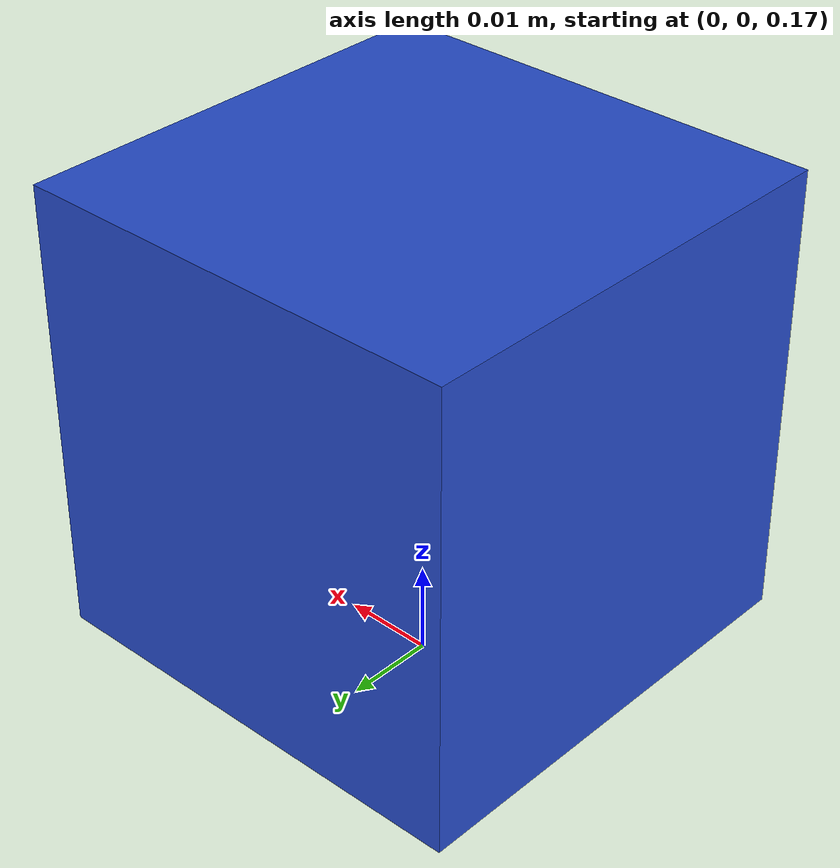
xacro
<?xml version="1.0"?>
<robot name="camera" xmlns:xacro="http://www.ros.org/wiki/xacro">
  <xacro:property name="PI" value="3.1415926535897931"/>

  <xacro:property name="cameraPos" value="0"/>

  <xacro:property name="cameraSize" value="0.05"/>
  <xacro:property name="cameraMass" value="0.1"/>

  <xacro:include filename="$(find mybot_description)/urdf/materials.xacro" />
  <xacro:include filename="$(find mybot_description)/urdf/macros.xacro" />
  <xacro:include filename="$(find mybot_description)/urdf/camera.gazebo" />

  <link name="footprint"/>

  <joint name="camera_joint" type="fixed">
    <parent link="footprint"/>
    <child link="camera"/>
  </joint>

  <link name="camera">
    <collision>
      <origin xyz="0 0 ${cameraPos}" rpy="0 0 0"/>
      <geometry>
        <box size="${cameraSize} ${cameraSize} ${cameraSize}"/>
      </geometry>
    </collision>

    <visual>
      <origin xyz="0 0 ${cameraPos}" rpy="0 0 0"/>
      <geometry>
        <box size="${cameraSize} ${cameraSize} ${cameraSize}"/>
      </geometry>
      <material name="blue"/>
    </visual>

    <inertial>
      <mass value="${cameraMass}"/>
      <origin xyz="0 0 ${cameraPos}" rpy="0 0 0"/>
      <xacro:box_inertia m="${cameraMass}" x="${cameraSize}" y="${cameraSize}" z="${cameraSize}" />
    </inertial>
  </link>

</robot>

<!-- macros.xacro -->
<robot xmlns:xacro="http://www.ros.org/wiki/xacro">

  <xacro:property name="cameraPos" value="0.2"/>
  <xacro:property name="cameraPosX" value="0.2"/>

  <xacro:macro name="cylinder_inertia" params="m r h">
    <inertia  ixx="${m*(3*r*r+h*h)/12}" ixy = "0" ixz = "0"
      iyy="${m*(3*r*r+h*h)/12}" iyz = "0"
      izz="${m*r*r/2}"
      />
  </xacro:macro>

  <xacro:macro name="box_inertia" params="m x y z">
    <inertia  ixx="${m*(y*y+z*z)/12}" ixy = "0" ixz = "0"
      iyy="${m*(x*x+z*z)/12}" iyz = "0"
      izz="${m*(x*x+z*z)/12}"
    />
  </xacro:macro>

  <xacro:macro name="sphere_inertia" params="m r">
    <inertia  ixx="${2*m*r*r/5}" ixy = "0" ixz = "0"
      iyy="${2*m*r*r/5}" iyz = "0"
      izz="${2*m*r*r/5}"
    />
  </xacro:macro>

  <xacro:macro name="wheel" params="lr tY">

    <link name="${lr}_wheel">
      <collision>
        <origin xyz="0 0 0" rpy="0 ${PI/2} ${PI/2}" />
        <geometry>
          <cylinder length="${wheelWidth}" radius="${wheelRadius}"/>
        </geometry>
      </collision>

      <visual>
        <origin xyz="0 0 0" rpy="0 ${PI/2} ${PI/2}" />
        <geometry>
          <cylinder length="${wheelWidth}" radius="${wheelRadius}"/>
        </geometry>
        <material name="black"/>
      </visual>

      <inertial>
        <origin xyz="0 0 0" rpy="0 ${PI/2} ${PI/2}" />
        <mass value="${wheelMass}"/>
        <xacro:cylinder_inertia m="${wheelMass}" r="${wheelRadius}" h="${wheelWidth}"/>
      </inertial>
    </link>

    <gazebo reference="${lr}_wheel">
      <mu1 value="1.0"/>
      <mu2 value="1.0"/>
      <kp  value="10000000.0" />
      <kd  value="1.0" />
      <fdir1 value="1 0 0"/>
      <material>Gazebo/Black</material>
    </gazebo>

    <joint name="${lr}_wheel_hinge" type="continuous">
      <parent link="chassis"/>
      <child link="${lr}_wheel"/>
      <origin xyz="${-wheelPos+chassisLength/2} ${tY*wheelWidth/2+tY*chassisWidth/2} ${wheelRadius}" rpy="0 0 0" />
      <axis xyz="0 1 0" rpy="0 0 0" />
      <limit effort="100" velocity="100"/>
      <joint_properties damping="0.0" friction="0.1"/>
    </joint>

    <transmission name="${lr}_trans">
      <type>transmission_interface/SimpleTransmission</type>
      <joint name="${lr}_wheel_hinge">
        <hardwareInterface>hardware_interface/EffortJointInterface</hardwareInterface>
      </joint>
      <actuator name="${lr}Motor">
        <hardwareInterface>EffortJointInterface</hardwareInterface>
        <mechanicalReduction>10</mechanicalReduction>
      </actuator>

    </transmission>

  </xacro:macro>

</robot>
